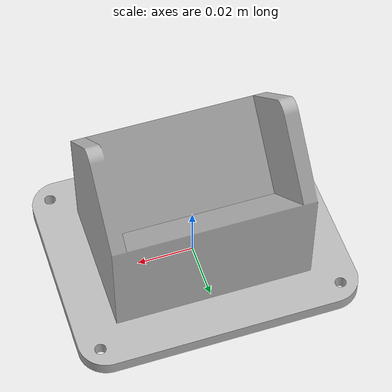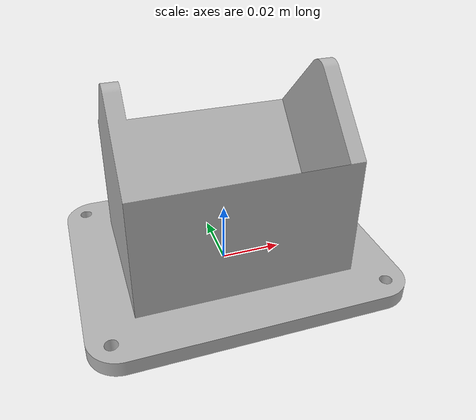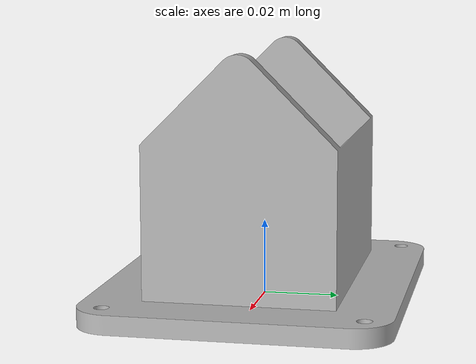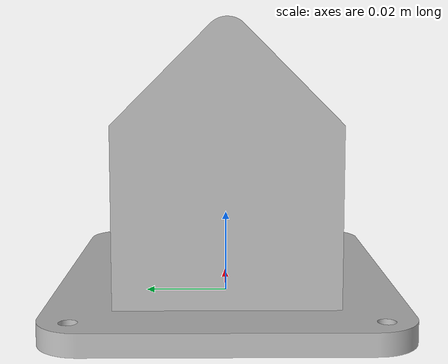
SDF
<?xml version="1.0" ?>
<sdf version="1.7">
<model name="socle">

  <link name="world"/>

  <link name="socle">
    <pose>0 0 0 0 0 0</pose>
    <visual name="socle_visual">
      <pose>0 0 0 0 0 0</pose>
      <geometry>
        <mesh>
          <scale>0.001 0.001 0.001</scale>
          <uri>SocleRubiks.stl</uri>
        </mesh>
      </geometry>
      <material name="cyan">
        <color rgba="0 1.0 1.0 1.0"/>
      </material>
    </visual>
    <collision name="socle_collision">
      <pose>0 0 0 0 0 0</pose>
      <geometry>
        <mesh>
          <scale>0.001 0.001 0.001</scale>
          <uri>SocleRubiks.stl</uri>
        </mesh>
      </geometry>
    </collision>
  </link>

  <joint name="world_to_socle" type="floating">
    <pose>0 0 0 -1.57 0 0</pose>
    <parent>world</parent>
    <child>socle</child>
  </joint>
</model>
</sdf>
